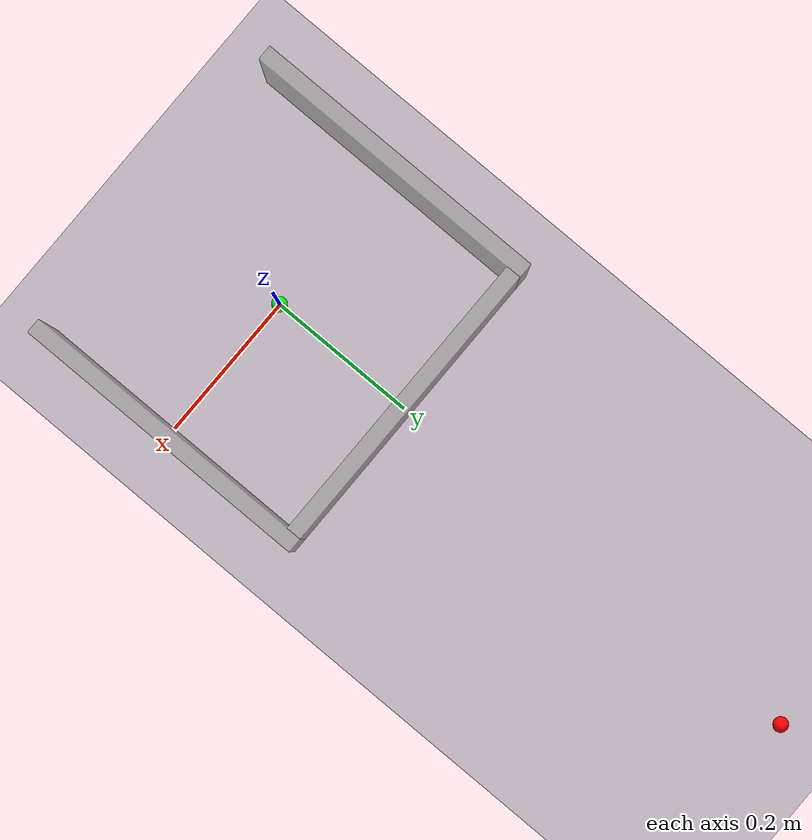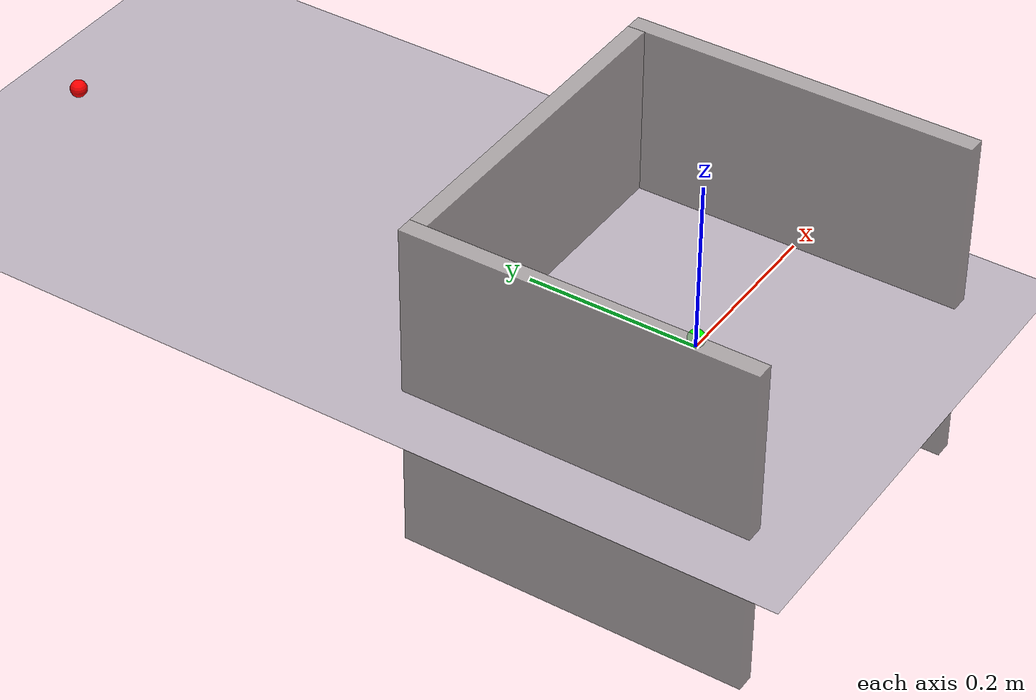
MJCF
<mujoco model="point_mass scene">
  <!-- Model that includes like lighting and a ground. -->
  <include file="point_mass.xml"/>

  <!-- Target sphere -->
  <worldbody>
    <body name="goal" mocap="true" pos="0 0.8 0.011">
      <site type="sphere" size=".01" rgba="1 0 0 1"  />
    </body>
  </worldbody>

  <!-- U obstacle -->
  <worldbody>
    <body name="U" pos="0 0 0" quat="0.707 0 0 -0.707">
      <geom name="frontwall" size="0.01 0.2 0.2" type="box" pos="-0.2 0 0" rgba ="0.6 0.6 0.6 0.8"/>
      <geom name="leftwall" size="0.2 0.01 0.2" type="box" pos="-0.01 0.21 0" rgba ="0.6 0.6 0.6 0.8"/>
      <geom name="rightwall" size="0.2 0.01 0.2" type="box" pos="-0.01 -0.21 0" rgba ="0.6 0.6 0.6 0.8"/>
    </body>

  </worldbody>

  <statistic center="0 0 0" extent="0.9"/>

  <visual>
    <headlight diffuse="1 1 1" ambient="0.3 0.3 0.3" specular="0 0 0"/>
    <rgba haze="0.15 0.25 0.35 1"/>
  </visual>

  <asset>
    <texture type="skybox" builtin="gradient" rgb1="0.3 0.5 0.7" rgb2="0 0 0" width="512" height="3072"/>
    <texture type="2d" name="groundplane" builtin="checker" mark="edge" rgb1="0.2 0.3 0.4" rgb2="0.1 0.2 0.3"
      markrgb="0.8 0.8 0.8" width="300" height="300"/>
    <material name="groundplane" texture="groundplane" texuniform="true" texrepeat="5 5" reflectance="0.2"/>
  </asset>

  <worldbody>
    <light pos="0 0 1"/>
    <geom name="floor" size="0 0 .125" type="plane" material="groundplane"/>
  </worldbody>

</mujoco>

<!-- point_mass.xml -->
<mujoco model="pusht">
  <option timestep="0.01" iterations="1" ls_iterations="4" />

  <default>
    <velocity ctrllimited="true" ctrlrange="-1.0 1.0" kv="0.1"/>
    <geom friction="1.0" solimp="0.0 0.95 0.005" solref="0.02 1"/>
  </default>

  <worldbody>
    <body name="point_mass" pos="0 0 .011">
      <joint name="root_x" type="slide" pos="0 0 0" axis="1 0 0" />
      <joint name="root_y" type="slide" pos="0 0 0" axis="0 1 0" />
      <geom name="point_mass" type="sphere" size=".01" rgba="0 1 0 1" />
    </body>
  </worldbody>

  <actuator>
    <velocity name="x_motor" joint="root_x" />
    <velocity name="y_motor" joint="root_y" />
  </actuator>

</mujoco>
